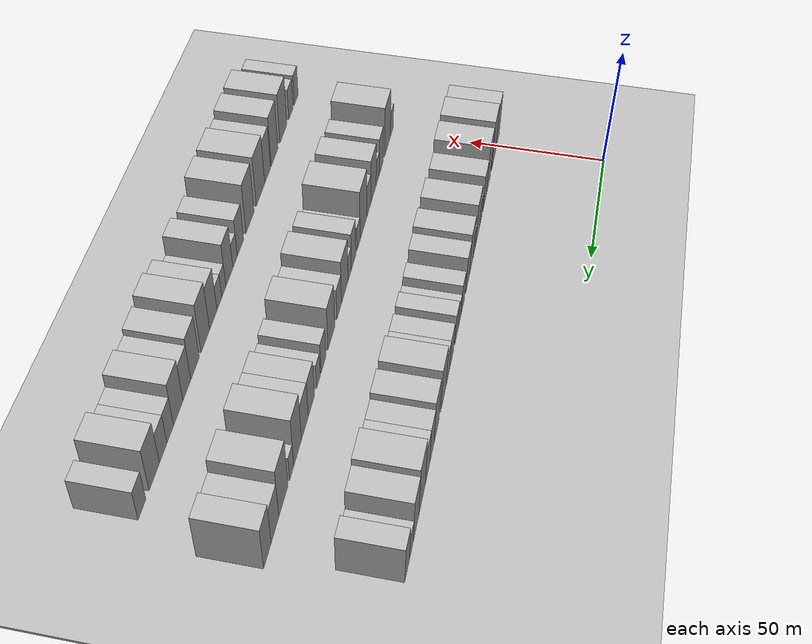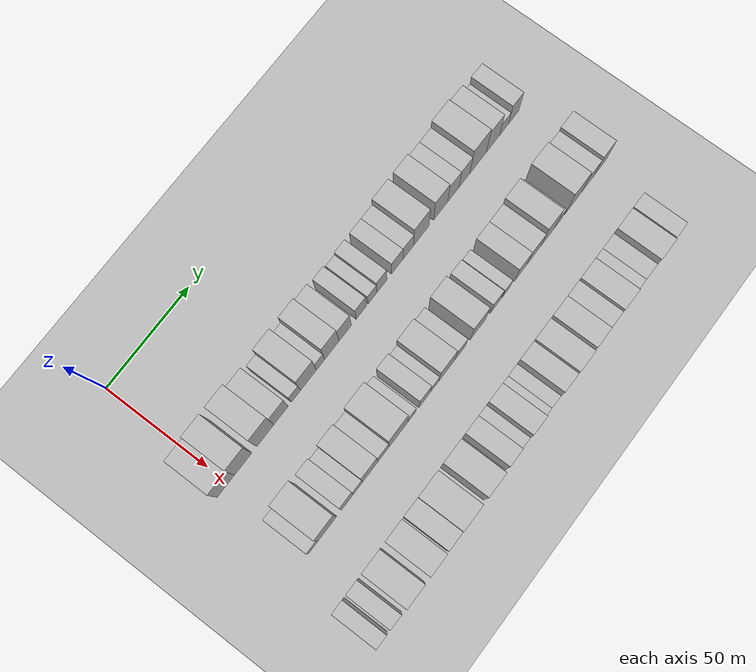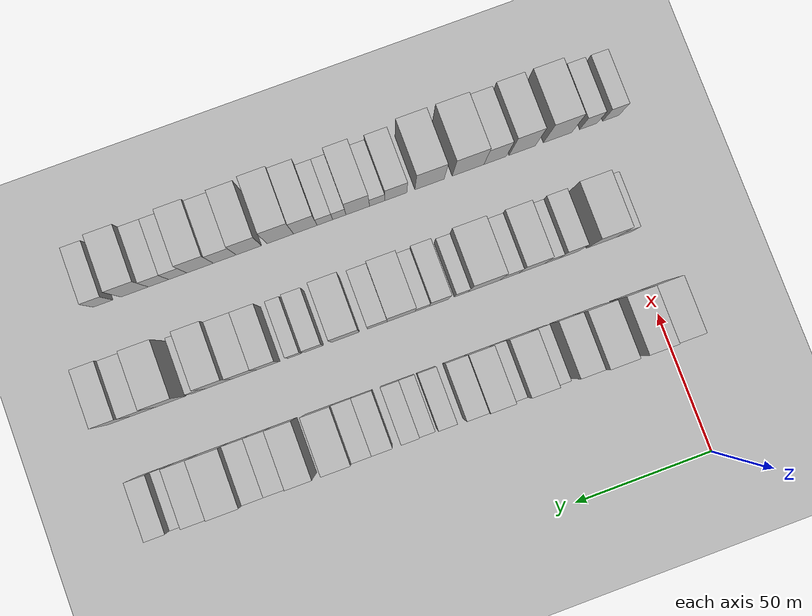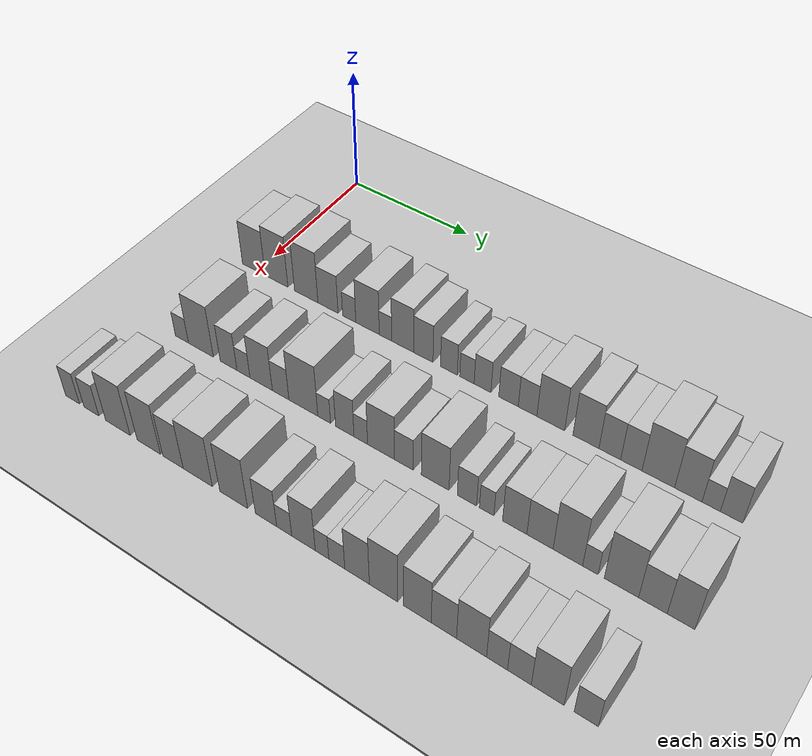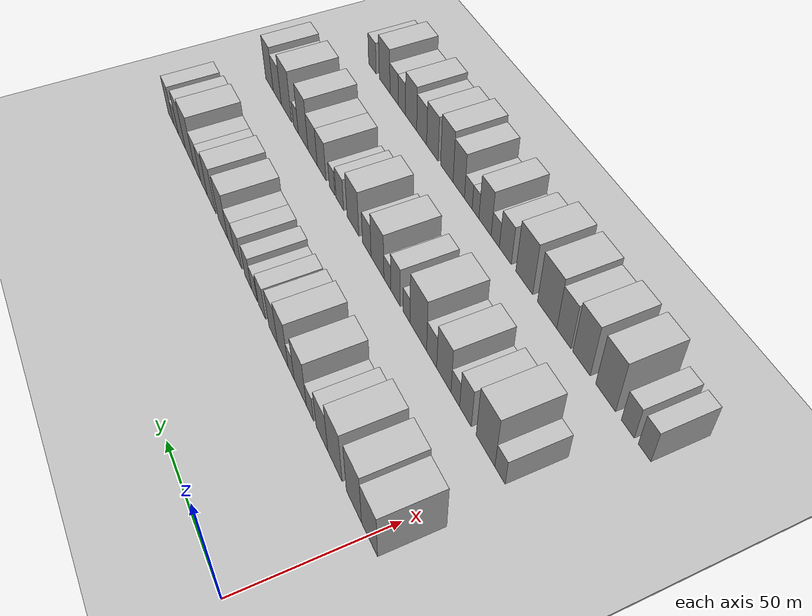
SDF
<sdf version="1.6">
 <world name="default">
  <include><name>ground_plane_1</name><uri>model://HANNAS_ground_plane</uri></include>
  <include>
   <name>ground_plane_2</name>
   <uri>model://HANNAS_ground_plane</uri>
   <pose>100 0 0  0 0 0</pose>
  </include>
  <model name="building_46">
   <static>1</static>
   <pose>50.0000 -1.2661 0 0.000000 0.000000 0.000000</pose>
   <link name="link">
    <pose>0 0 10.50 0 0 0</pose>
    <collision name="collision"><geometry><box><size>20.0000 10.4453 21.0000</size></box></geometry></collision>
    <visual name="visual">
     <cast_shadows>0</cast_shadows>
     <geometry><box><size>20.0000 10.4453 21.0000</size></box></geometry>
     <material>
      <script>
       <uri>model://HANNAS_wall/materials/scripts</uri>
       <uri>model://HANNAS_wall/materials/textures</uri>
       <name>vrc/HANNAS_wall</name>
      </script>
     </material>
    </visual>
   </link>
  </model>
  <model name="building_47">
   <static>1</static>
   <pose>50.0000 9.1413 0 0.000000 0.000000 0.000000</pose>
   <link name="link">
    <pose>0 0 12.00 0 0 0</pose>
    <collision name="collision"><geometry><box><size>20.0000 10.3695 24.0000</size></box></geometry></collision>
    <visual name="visual">
     <cast_shadows>0</cast_shadows>
     <geometry><box><size>20.0000 10.3695 24.0000</size></box></geometry>
     <material>
      <script>
       <uri>model://HANNAS_wall/materials/scripts</uri>
       <uri>model://HANNAS_wall/materials/textures</uri>
       <name>vrc/HANNAS_wall</name>
      </script>
     </material>
    </visual>
   </link>
  </model>
  <model name="building_48">
   <static>1</static>
   <pose>50.0000 22.5073 0 0.000000 0.000000 0.000000</pose>
   <link name="link">
    <pose>0 0 12.00 0 0 0</pose>
    <collision name="collision"><geometry><box><size>20.0000 10.3625 24.0000</size></box></geometry></collision>
    <visual name="visual">
     <cast_shadows>0</cast_shadows>
     <geometry><box><size>20.0000 10.3625 24.0000</size></box></geometry>
     <material>
      <script>
       <uri>model://HANNAS_wall/materials/scripts</uri>
       <uri>model://HANNAS_wall/materials/textures</uri>
       <name>vrc/HANNAS_wall</name>
      </script>
     </material>
    </visual>
   </link>
  </model>
  <model name="building_49">
   <static>1</static>
   <pose>50.0000 32.0715 0 0.000000 0.000000 0.000000</pose>
   <link name="link">
    <pose>0 0 9.00 0 0 0</pose>
    <collision name="collision"><geometry><box><size>20.0000 8.7659 18.0000</size></box></geometry></collision>
    <visual name="visual">
     <cast_shadows>0</cast_shadows>
     <geometry><box><size>20.0000 8.7659 18.0000</size></box></geometry>
     <material>
      <script>
       <uri>model://HANNAS_wall/materials/scripts</uri>
       <uri>model://HANNAS_wall/materials/textures</uri>
       <name>vrc/HANNAS_wall</name>
      </script>
     </material>
    </visual>
   </link>
  </model>
  <model name="building_50">
   <static>1</static>
   <pose>50.0000 41.2767 0 0.000000 0.000000 0.000000</pose>
   <link name="link">
    <pose>0 0 6.00 0 0 0</pose>
    <collision name="collision"><geometry><box><size>20.0000 5.6445 12.0000</size></box></geometry></collision>
    <visual name="visual">
     <cast_shadows>0</cast_shadows>
     <geometry><box><size>20.0000 5.6445 12.0000</size></box></geometry>
     <material>
      <script>
       <uri>model://HANNAS_wall/materials/scripts</uri>
       <uri>model://HANNAS_wall/materials/textures</uri>
       <name>vrc/HANNAS_wall</name>
      </script>
     </material>
    </visual>
   </link>
  </model>
  <model name="building_51">
   <static>1</static>
   <pose>50.0000 49.0325 0 0.000000 0.000000 0.000000</pose>
   <link name="link">
    <pose>0 0 10.50 0 0 0</pose>
    <collision name="collision"><geometry><box><size>20.0000 9.8673 21.0000</size></box></geometry></collision>
    <visual name="visual">
     <cast_shadows>0</cast_shadows>
     <geometry><box><size>20.0000 9.8673 21.0000</size></box></geometry>
     <material>
      <script>
       <uri>model://HANNAS_wall/materials/scripts</uri>
       <uri>model://HANNAS_wall/materials/textures</uri>
       <name>vrc/HANNAS_wall</name>
      </script>
     </material>
    </visual>
   </link>
  </model>
  <model name="building_52">
   <static>1</static>
   <pose>50.0000 56.5522 0 0.000000 0.000000 0.000000</pose>
   <link name="link">
    <pose>0 0 6.00 0 0 0</pose>
    <collision name="collision"><geometry><box><size>20.0000 5.1720 12.0000</size></box></geometry></collision>
    <visual name="visual">
     <cast_shadows>0</cast_shadows>
     <geometry><box><size>20.0000 5.1720 12.0000</size></box></geometry>
     <material>
      <script>
       <uri>model://HANNAS_wall/materials/scripts</uri>
       <uri>model://HANNAS_wall/materials/textures</uri>
       <name>vrc/HANNAS_wall</name>
      </script>
     </material>
    </visual>
   </link>
  </model>
  <model name="building_53">
   <static>1</static>
   <pose>50.0000 63.6290 0 0.000000 0.000000 0.000000</pose>
   <link name="link">
    <pose>0 0 10.50 0 0 0</pose>
    <collision name="collision"><geometry><box><size>20.0000 8.9818 21.0000</size></box></geometry></collision>
    <visual name="visual">
     <cast_shadows>0</cast_shadows>
     <geometry><box><size>20.0000 8.9818 21.0000</size></box></geometry>
     <material>
      <script>
       <uri>model://HANNAS_wall/materials/scripts</uri>
       <uri>model://HANNAS_wall/materials/textures</uri>
       <name>vrc/HANNAS_wall</name>
      </script>
     </material>
    </visual>
   </link>
  </model>
  <model name="building_54">
   <static>1</static>
   <pose>50.0000 72.0304 0 0.000000 0.000000 0.000000</pose>
   <link name="link">
    <pose>0 0 9.00 0 0 0</pose>
    <collision name="collision"><geometry><box><size>20.0000 7.8210 18.0000</size></box></geometry></collision>
    <visual name="visual">
     <cast_shadows>0</cast_shadows>
     <geometry><box><size>20.0000 7.8210 18.0000</size></box></geometry>
     <material>
      <script>
       <uri>model://HANNAS_wall/materials/scripts</uri>
       <uri>model://HANNAS_wall/materials/textures</uri>
       <name>vrc/HANNAS_wall</name>
      </script>
     </material>
    </visual>
   </link>
  </model>
  <model name="building_55">
   <static>1</static>
   <pose>50.0000 82.2617 0 0.000000 0.000000 0.000000</pose>
   <link name="link">
    <pose>0 0 7.50 0 0 0</pose>
    <collision name="collision"><geometry><box><size>20.0000 6.6414 15.0000</size></box></geometry></collision>
    <visual name="visual">
     <cast_shadows>0</cast_shadows>
     <geometry><box><size>20.0000 6.6414 15.0000</size></box></geometry>
     <material>
      <script>
       <uri>model://HANNAS_wall/materials/scripts</uri>
       <uri>model://HANNAS_wall/materials/textures</uri>
       <name>vrc/HANNAS_wall</name>
      </script>
     </material>
    </visual>
   </link>
  </model>
  <model name="building_56">
   <static>1</static>
   <pose>50.0000 89.3755 0 0.000000 0.000000 0.000000</pose>
   <link name="link">
    <pose>0 0 6.00 0 0 0</pose>
    <collision name="collision"><geometry><box><size>20.0000 5.5863 12.0000</size></box></geometry></collision>
    <visual name="visual">
     <cast_shadows>0</cast_shadows>
     <geometry><box><size>20.0000 5.5863 12.0000</size></box></geometry>
     <material>
      <script>
       <uri>model://HANNAS_wall/materials/scripts</uri>
       <uri>model://HANNAS_wall/materials/textures</uri>
       <name>vrc/HANNAS_wall</name>
      </script>
     </material>
    </visual>
   </link>
  </model>
  <model name="building_57">
   <static>1</static>
   <pose>50.0000 95.4009 0 0.000000 0.000000 0.000000</pose>
   <link name="link">
    <pose>0 0 7.50 0 0 0</pose>
    <collision name="collision"><geometry><box><size>20.0000 6.4646 15.0000</size></box></geometry></collision>
    <visual name="visual">
     <cast_shadows>0</cast_shadows>
     <geometry><box><size>20.0000 6.4646 15.0000</size></box></geometry>
     <material>
      <script>
       <uri>model://HANNAS_wall/materials/scripts</uri>
       <uri>model://HANNAS_wall/materials/textures</uri>
       <name>vrc/HANNAS_wall</name>
      </script>
     </material>
    </visual>
   </link>
  </model>
  <model name="building_58">
   <static>1</static>
   <pose>50.0000 105.3045 0 0.000000 0.000000 0.000000</pose>
   <link name="link">
    <pose>0 0 7.50 0 0 0</pose>
    <collision name="collision"><geometry><box><size>20.0000 7.3424 15.0000</size></box></geometry></collision>
    <visual name="visual">
     <cast_shadows>0</cast_shadows>
     <geometry><box><size>20.0000 7.3424 15.0000</size></box></geometry>
     <material>
      <script>
       <uri>model://HANNAS_wall/materials/scripts</uri>
       <uri>model://HANNAS_wall/materials/textures</uri>
       <name>vrc/HANNAS_wall</name>
      </script>
     </material>
    </visual>
   </link>
  </model>
  <model name="building_59">
   <static>1</static>
   <pose>50.0000 112.4464 0 0.000000 0.000000 0.000000</pose>
   <link name="link">
    <pose>0 0 7.50 0 0 0</pose>
    <collision name="collision"><geometry><box><size>20.0000 6.9415 15.0000</size></box></geometry></collision>
    <visual name="visual">
     <cast_shadows>0</cast_shadows>
     <geometry><box><size>20.0000 6.9415 15.0000</size></box></geometry>
     <material>
      <script>
       <uri>model://HANNAS_wall/materials/scripts</uri>
       <uri>model://HANNAS_wall/materials/textures</uri>
       <name>vrc/HANNAS_wall</name>
      </script>
     </material>
    </visual>
   </link>
  </model>
  <model name="building_60">
   <static>1</static>
   <pose>50.0000 120.9974 0 0.000000 0.000000 0.000000</pose>
   <link name="link">
    <pose>0 0 10.50 0 0 0</pose>
    <collision name="collision"><geometry><box><size>20.0000 10.1605 21.0000</size></box></geometry></collision>
    <visual name="visual">
     <cast_shadows>0</cast_shadows>
     <geometry><box><size>20.0000 10.1605 21.0000</size></box></geometry>
     <material>
      <script>
       <uri>model://HANNAS_wall/materials/scripts</uri>
       <uri>model://HANNAS_wall/materials/textures</uri>
       <name>vrc/HANNAS_wall</name>
      </script>
     </material>
    </visual>
   </link>
  </model>
  <model name="building_61">
   <static>1</static>
   <pose>50.0000 133.7174 0 0.000000 0.000000 0.000000</pose>
   <link name="link">
    <pose>0 0 10.50 0 0 0</pose>
    <collision name="collision"><geometry><box><size>20.0000 9.2794 21.0000</size></box></geometry></collision>
    <visual name="visual">
     <cast_shadows>0</cast_shadows>
     <geometry><box><size>20.0000 9.2794 21.0000</size></box></geometry>
     <material>
      <script>
       <uri>model://HANNAS_wall/materials/scripts</uri>
       <uri>model://HANNAS_wall/materials/textures</uri>
       <name>vrc/HANNAS_wall</name>
      </script>
     </material>
    </visual>
   </link>
  </model>
  <model name="building_62">
   <static>1</static>
   <pose>50.0000 142.1484 0 0.000000 0.000000 0.000000</pose>
   <link name="link">
    <pose>0 0 9.00 0 0 0</pose>
    <collision name="collision"><geometry><box><size>20.0000 7.5827 18.0000</size></box></geometry></collision>
    <visual name="visual">
     <cast_shadows>0</cast_shadows>
     <geometry><box><size>20.0000 7.5827 18.0000</size></box></geometry>
     <material>
      <script>
       <uri>model://HANNAS_wall/materials/scripts</uri>
       <uri>model://HANNAS_wall/materials/textures</uri>
       <name>vrc/HANNAS_wall</name>
      </script>
     </material>
    </visual>
   </link>
  </model>
  <model name="building_63">
   <static>1</static>
   <pose>50.0000 149.6116 0 0.000000 0.000000 0.000000</pose>
   <link name="link">
    <pose>0 0 9.00 0 0 0</pose>
    <collision name="collision"><geometry><box><size>20.0000 7.3437 18.0000</size></box></geometry></collision>
    <visual name="visual">
     <cast_shadows>0</cast_shadows>
     <geometry><box><size>20.0000 7.3437 18.0000</size></box></geometry>
     <material>
      <script>
       <uri>model://HANNAS_wall/materials/scripts</uri>
       <uri>model://HANNAS_wall/materials/textures</uri>
       <name>vrc/HANNAS_wall</name>
      </script>
     </material>
    </visual>
   </link>
  </model>
  <model name="building_64">
   <static>1</static>
   <pose>50.0000 158.7997 0 0.000000 0.000000 0.000000</pose>
   <link name="link">
    <pose>0 0 12.00 0 0 0</pose>
    <collision name="collision"><geometry><box><size>20.0000 11.0326 24.0000</size></box></geometry></collision>
    <visual name="visual">
     <cast_shadows>0</cast_shadows>
     <geometry><box><size>20.0000 11.0326 24.0000</size></box></geometry>
     <material>
      <script>
       <uri>model://HANNAS_wall/materials/scripts</uri>
       <uri>model://HANNAS_wall/materials/textures</uri>
       <name>vrc/HANNAS_wall</name>
      </script>
     </material>
    </visual>
   </link>
  </model>
  <model name="building_65">
   <static>1</static>
   <pose>50.0000 168.8379 0 0.000000 0.000000 0.000000</pose>
   <link name="link">
    <pose>0 0 10.50 0 0 0</pose>
    <collision name="collision"><geometry><box><size>20.0000 9.0439 21.0000</size></box></geometry></collision>
    <visual name="visual">
     <cast_shadows>0</cast_shadows>
     <geometry><box><size>20.0000 9.0439 21.0000</size></box></geometry>
     <material>
      <script>
       <uri>model://HANNAS_wall/materials/scripts</uri>
       <uri>model://HANNAS_wall/materials/textures</uri>
       <name>vrc/HANNAS_wall</name>
      </script>
     </material>
    </visual>
   </link>
  </model>
  <model name="building_66">
   <static>1</static>
   <pose>50.0000 176.3385 0 0.000000 0.000000 0.000000</pose>
   <link name="link">
    <pose>0 0 6.00 0 0 0</pose>
    <collision name="collision"><geometry><box><size>20.0000 5.9573 12.0000</size></box></geometry></collision>
    <visual name="visual">
     <cast_shadows>0</cast_shadows>
     <geometry><box><size>20.0000 5.9573 12.0000</size></box></geometry>
     <material>
      <script>
       <uri>model://HANNAS_wall/materials/scripts</uri>
       <uri>model://HANNAS_wall/materials/textures</uri>
       <name>vrc/HANNAS_wall</name>
      </script>
     </material>
    </visual>
   </link>
  </model>
  <model name="building_67">
   <static>1</static>
   <pose>50.0000 182.9283 0 0.000000 0.000000 0.000000</pose>
   <link name="link">
    <pose>0 0 9.00 0 0 0</pose>
    <collision name="collision"><geometry><box><size>20.0000 7.2224 18.0000</size></box></geometry></collision>
    <visual name="visual">
     <cast_shadows>0</cast_shadows>
     <geometry><box><size>20.0000 7.2224 18.0000</size></box></geometry>
     <material>
      <script>
       <uri>model://HANNAS_wall/materials/scripts</uri>
       <uri>model://HANNAS_wall/materials/textures</uri>
       <name>vrc/HANNAS_wall</name>
      </script>
     </material>
    </visual>
   </link>
  </model>
  <model name="building_132">
   <static>1</static>
   <pose>90.0000 0.9035 0 0.000000 0.000000 0.000000</pose>
   <link name="link">
    <pose>0 0 6.00 0 0 0</pose>
    <collision name="collision"><geometry><box><size>20.0000 5.8924 12.0000</size></box></geometry></collision>
    <visual name="visual">
     <cast_shadows>0</cast_shadows>
     <geometry><box><size>20.0000 5.8924 12.0000</size></box></geometry>
     <material>
      <script>
       <uri>model://HANNAS_wall/materials/scripts</uri>
       <uri>model://HANNAS_wall/materials/textures</uri>
       <name>vrc/HANNAS_wall</name>
      </script>
     </material>
    </visual>
   </link>
  </model>
  <model name="building_133">
   <static>1</static>
   <pose>90.0000 9.3978 0 0.000000 0.000000 0.000000</pose>
   <link name="link">
    <pose>0 0 12.00 0 0 0</pose>
    <collision name="collision"><geometry><box><size>20.0000 11.0961 24.0000</size></box></geometry></collision>
    <visual name="visual">
     <cast_shadows>0</cast_shadows>
     <geometry><box><size>20.0000 11.0961 24.0000</size></box></geometry>
     <material>
      <script>
       <uri>model://HANNAS_wall/materials/scripts</uri>
       <uri>model://HANNAS_wall/materials/textures</uri>
       <name>vrc/HANNAS_wall</name>
      </script>
     </material>
    </visual>
   </link>
  </model>
  <model name="building_134">
   <static>1</static>
   <pose>90.0000 21.5952 0 0.000000 0.000000 0.000000</pose>
   <link name="link">
    <pose>0 0 9.00 0 0 0</pose>
    <collision name="collision"><geometry><box><size>20.0000 7.2986 18.0000</size></box></geometry></collision>
    <visual name="visual">
     <cast_shadows>0</cast_shadows>
     <geometry><box><size>20.0000 7.2986 18.0000</size></box></geometry>
     <material>
      <script>
       <uri>model://HANNAS_wall/materials/scripts</uri>
       <uri>model://HANNAS_wall/materials/textures</uri>
       <name>vrc/HANNAS_wall</name>
      </script>
     </material>
    </visual>
   </link>
  </model>
  <model name="building_135">
   <static>1</static>
   <pose>90.0000 28.0359 0 0.000000 0.000000 0.000000</pose>
   <link name="link">
    <pose>0 0 6.00 0 0 0</pose>
    <collision name="collision"><geometry><box><size>20.0000 5.5828 12.0000</size></box></geometry></collision>
    <visual name="visual">
     <cast_shadows>0</cast_shadows>
     <geometry><box><size>20.0000 5.5828 12.0000</size></box></geometry>
     <material>
      <script>
       <uri>model://HANNAS_wall/materials/scripts</uri>
       <uri>model://HANNAS_wall/materials/textures</uri>
       <name>vrc/HANNAS_wall</name>
      </script>
     </material>
    </visual>
   </link>
  </model>
  <model name="building_136">
   <static>1</static>
   <pose>90.0000 35.5487 0 0.000000 0.000000 0.000000</pose>
   <link name="link">
    <pose>0 0 10.50 0 0 0</pose>
    <collision name="collision"><geometry><box><size>20.0000 9.4429 21.0000</size></box></geometry></collision>
    <visual name="visual">
     <cast_shadows>0</cast_shadows>
     <geometry><box><size>20.0000 9.4429 21.0000</size></box></geometry>
     <material>
      <script>
       <uri>model://HANNAS_wall/materials/scripts</uri>
       <uri>model://HANNAS_wall/materials/textures</uri>
       <name>vrc/HANNAS_wall</name>
      </script>
     </material>
    </visual>
   </link>
  </model>
  <model name="building_137">
   <static>1</static>
   <pose>90.0000 43.7064 0 0.000000 0.000000 0.000000</pose>
   <link name="link">
    <pose>0 0 7.50 0 0 0</pose>
    <collision name="collision"><geometry><box><size>20.0000 6.8723 15.0000</size></box></geometry></collision>
    <visual name="visual">
     <cast_shadows>0</cast_shadows>
     <geometry><box><size>20.0000 6.8723 15.0000</size></box></geometry>
     <material>
      <script>
       <uri>model://HANNAS_wall/materials/scripts</uri>
       <uri>model://HANNAS_wall/materials/textures</uri>
       <name>vrc/HANNAS_wall</name>
      </script>
     </material>
    </visual>
   </link>
  </model>
  <model name="building_138">
   <static>1</static>
   <pose>90.0000 53.0431 0 0.000000 0.000000 0.000000</pose>
   <link name="link">
    <pose>0 0 12.00 0 0 0</pose>
    <collision name="collision"><geometry><box><size>20.0000 11.8011 24.0000</size></box></geometry></collision>
    <visual name="visual">
     <cast_shadows>0</cast_shadows>
     <geometry><box><size>20.0000 11.8011 24.0000</size></box></geometry>
     <material>
      <script>
       <uri>model://HANNAS_wall/materials/scripts</uri>
       <uri>model://HANNAS_wall/materials/textures</uri>
       <name>vrc/HANNAS_wall</name>
      </script>
     </material>
    </visual>
   </link>
  </model>
  <model name="building_139">
   <static>1</static>
   <pose>90.0000 61.4993 0 0.000000 0.000000 0.000000</pose>
   <link name="link">
    <pose>0 0 6.00 0 0 0</pose>
    <collision name="collision"><geometry><box><size>20.0000 5.1113 12.0000</size></box></geometry></collision>
    <visual name="visual">
     <cast_shadows>0</cast_shadows>
     <geometry><box><size>20.0000 5.1113 12.0000</size></box></geometry>
     <material>
      <script>
       <uri>model://HANNAS_wall/materials/scripts</uri>
       <uri>model://HANNAS_wall/materials/textures</uri>
       <name>vrc/HANNAS_wall</name>
      </script>
     </material>
    </visual>
   </link>
  </model>
  <model name="building_140">
   <static>1</static>
   <pose>90.0000 69.6792 0 0.000000 0.000000 0.000000</pose>
   <link name="link">
    <pose>0 0 9.00 0 0 0</pose>
    <collision name="collision"><geometry><box><size>20.0000 7.2485 18.0000</size></box></geometry></collision>
    <visual name="visual">
     <cast_shadows>0</cast_shadows>
     <geometry><box><size>20.0000 7.2485 18.0000</size></box></geometry>
     <material>
      <script>
       <uri>model://HANNAS_wall/materials/scripts</uri>
       <uri>model://HANNAS_wall/materials/textures</uri>
       <name>vrc/HANNAS_wall</name>
      </script>
     </material>
    </visual>
   </link>
  </model>
  <model name="building_141">
   <static>1</static>
   <pose>90.0000 75.9424 0 0.000000 0.000000 0.000000</pose>
   <link name="link">
    <pose>0 0 6.00 0 0 0</pose>
    <collision name="collision"><geometry><box><size>20.0000 5.2779 12.0000</size></box></geometry></collision>
    <visual name="visual">
     <cast_shadows>0</cast_shadows>
     <geometry><box><size>20.0000 5.2779 12.0000</size></box></geometry>
     <material>
      <script>
       <uri>model://HANNAS_wall/materials/scripts</uri>
       <uri>model://HANNAS_wall/materials/textures</uri>
       <name>vrc/HANNAS_wall</name>
      </script>
     </material>
    </visual>
   </link>
  </model>
  <model name="building_142">
   <static>1</static>
   <pose>90.0000 83.7188 0 0.000000 0.000000 0.000000</pose>
   <link name="link">
    <pose>0 0 10.50 0 0 0</pose>
    <collision name="collision"><geometry><box><size>20.0000 10.2750 21.0000</size></box></geometry></collision>
    <visual name="visual">
     <cast_shadows>0</cast_shadows>
     <geometry><box><size>20.0000 10.2750 21.0000</size></box></geometry>
     <material>
      <script>
       <uri>model://HANNAS_wall/materials/scripts</uri>
       <uri>model://HANNAS_wall/materials/textures</uri>
       <name>vrc/HANNAS_wall</name>
      </script>
     </material>
    </visual>
   </link>
  </model>
  <model name="building_143">
   <static>1</static>
   <pose>90.0000 92.3898 0 0.000000 0.000000 0.000000</pose>
   <link name="link">
    <pose>0 0 7.50 0 0 0</pose>
    <collision name="collision"><geometry><box><size>20.0000 7.0669 15.0000</size></box></geometry></collision>
    <visual name="visual">
     <cast_shadows>0</cast_shadows>
     <geometry><box><size>20.0000 7.0669 15.0000</size></box></geometry>
     <material>
      <script>
       <uri>model://HANNAS_wall/materials/scripts</uri>
       <uri>model://HANNAS_wall/materials/textures</uri>
       <name>vrc/HANNAS_wall</name>
      </script>
     </material>
    </visual>
   </link>
  </model>
  <model name="building_144">
   <static>1</static>
   <pose>90.0000 103.9994 0 0.000000 0.000000 0.000000</pose>
   <link name="link">
    <pose>0 0 10.50 0 0 0</pose>
    <collision name="collision"><geometry><box><size>20.0000 10.1522 21.0000</size></box></geometry></collision>
    <visual name="visual">
     <cast_shadows>0</cast_shadows>
     <geometry><box><size>20.0000 10.1522 21.0000</size></box></geometry>
     <material>
      <script>
       <uri>model://HANNAS_wall/materials/scripts</uri>
       <uri>model://HANNAS_wall/materials/textures</uri>
       <name>vrc/HANNAS_wall</name>
      </script>
     </material>
    </visual>
   </link>
  </model>
  <model name="building_145">
   <static>1</static>
   <pose>90.0000 115.5184 0 0.000000 0.000000 0.000000</pose>
   <link name="link">
    <pose>0 0 7.50 0 0 0</pose>
    <collision name="collision"><geometry><box><size>20.0000 6.8859 15.0000</size></box></geometry></collision>
    <visual name="visual">
     <cast_shadows>0</cast_shadows>
     <geometry><box><size>20.0000 6.8859 15.0000</size></box></geometry>
     <material>
      <script>
       <uri>model://HANNAS_wall/materials/scripts</uri>
       <uri>model://HANNAS_wall/materials/textures</uri>
       <name>vrc/HANNAS_wall</name>
      </script>
     </material>
    </visual>
   </link>
  </model>
  <model name="building_146">
   <static>1</static>
   <pose>90.0000 122.5100 0 0.000000 0.000000 0.000000</pose>
   <link name="link">
    <pose>0 0 6.00 0 0 0</pose>
    <collision name="collision"><geometry><box><size>20.0000 5.0973 12.0000</size></box></geometry></collision>
    <visual name="visual">
     <cast_shadows>0</cast_shadows>
     <geometry><box><size>20.0000 5.0973 12.0000</size></box></geometry>
     <material>
      <script>
       <uri>model://HANNAS_wall/materials/scripts</uri>
       <uri>model://HANNAS_wall/materials/textures</uri>
       <name>vrc/HANNAS_wall</name>
      </script>
     </material>
    </visual>
   </link>
  </model>
  <model name="building_147">
   <static>1</static>
   <pose>90.0000 132.2653 0 0.000000 0.000000 0.000000</pose>
   <link name="link">
    <pose>0 0 9.00 0 0 0</pose>
    <collision name="collision"><geometry><box><size>20.0000 8.4133 18.0000</size></box></geometry></collision>
    <visual name="visual">
     <cast_shadows>0</cast_shadows>
     <geometry><box><size>20.0000 8.4133 18.0000</size></box></geometry>
     <material>
      <script>
       <uri>model://HANNAS_wall/materials/scripts</uri>
       <uri>model://HANNAS_wall/materials/textures</uri>
       <name>vrc/HANNAS_wall</name>
      </script>
     </material>
    </visual>
   </link>
  </model>
  <model name="building_148">
   <static>1</static>
   <pose>90.0000 140.9160 0 0.000000 0.000000 0.000000</pose>
   <link name="link">
    <pose>0 0 9.00 0 0 0</pose>
    <collision name="collision"><geometry><box><size>20.0000 8.8882 18.0000</size></box></geometry></collision>
    <visual name="visual">
     <cast_shadows>0</cast_shadows>
     <geometry><box><size>20.0000 8.8882 18.0000</size></box></geometry>
     <material>
      <script>
       <uri>model://HANNAS_wall/materials/scripts</uri>
       <uri>model://HANNAS_wall/materials/textures</uri>
       <name>vrc/HANNAS_wall</name>
      </script>
     </material>
    </visual>
   </link>
  </model>
  <model name="building_149">
   <static>1</static>
   <pose>90.0000 150.2552 0 0.000000 0.000000 0.000000</pose>
   <link name="link">
    <pose>0 0 12.00 0 0 0</pose>
    <collision name="collision"><geometry><box><size>20.0000 9.7903 24.0000</size></box></geometry></collision>
    <visual name="visual">
     <cast_shadows>0</cast_shadows>
     <geometry><box><size>20.0000 9.7903 24.0000</size></box></geometry>
     <material>
      <script>
       <uri>model://HANNAS_wall/materials/scripts</uri>
       <uri>model://HANNAS_wall/materials/textures</uri>
       <name>vrc/HANNAS_wall</name>
      </script>
     </material>
    </visual>
   </link>
  </model>
  <model name="building_150">
   <static>1</static>
   <pose>90.0000 157.6554 0 0.000000 0.000000 0.000000</pose>
   <link name="link">
    <pose>0 0 6.00 0 0 0</pose>
    <collision name="collision"><geometry><box><size>20.0000 5.0099 12.0000</size></box></geometry></collision>
    <visual name="visual">
     <cast_shadows>0</cast_shadows>
     <geometry><box><size>20.0000 5.0099 12.0000</size></box></geometry>
     <material>
      <script>
       <uri>model://HANNAS_wall/materials/scripts</uri>
       <uri>model://HANNAS_wall/materials/textures</uri>
       <name>vrc/HANNAS_wall</name>
      </script>
     </material>
    </visual>
   </link>
  </model>
  <model name="building_151">
   <static>1</static>
   <pose>90.0000 167.6251 0 0.000000 0.000000 0.000000</pose>
   <link name="link">
    <pose>0 0 12.00 0 0 0</pose>
    <collision name="collision"><geometry><box><size>20.0000 10.9295 24.0000</size></box></geometry></collision>
    <visual name="visual">
     <cast_shadows>0</cast_shadows>
     <geometry><box><size>20.0000 10.9295 24.0000</size></box></geometry>
     <material>
      <script>
       <uri>model://HANNAS_wall/materials/scripts</uri>
       <uri>model://HANNAS_wall/materials/textures</uri>
       <name>vrc/HANNAS_wall</name>
      </script>
     </material>
    </visual>
   </link>
  </model>
  <model name="building_152">
   <static>1</static>
   <pose>90.0000 177.5412 0 0.000000 0.000000 0.000000</pose>
   <link name="link">
    <pose>0 0 9.00 0 0 0</pose>
    <collision name="collision"><geometry><box><size>20.0000 8.9027 18.0000</size></box></geometry></collision>
    <visual name="visual">
     <cast_shadows>0</cast_shadows>
     <geometry><box><size>20.0000 8.9027 18.0000</size></box></geometry>
     <material>
      <script>
       <uri>model://HANNAS_wall/materials/scripts</uri>
       <uri>model://HANNAS_wall/materials/textures</uri>
       <name>vrc/HANNAS_wall</name>
      </script>
     </material>
    </visual>
   </link>
  </model>
  <model name="building_153">
   <static>1</static>
   <pose>90.0000 186.2119 0 0.000000 0.000000 0.000000</pose>
   <link name="link">
    <pose>0 0 10.50 0 0 0</pose>
    <collision name="collision"><geometry><box><size>20.0000 8.4387 21.0000</size></box></geometry></collision>
    <visual name="visual">
     <cast_shadows>0</cast_shadows>
     <geometry><box><size>20.0000 8.4387 21.0000</size></box></geometry>
     <material>
      <script>
       <uri>model://HANNAS_wall/materials/scripts</uri>
       <uri>model://HANNAS_wall/materials/textures</uri>
       <name>vrc/HANNAS_wall</name>
      </script>
     </material>
    </visual>
   </link>
  </model>
  <model name="building_218">
   <static>1</static>
   <pose>130.0000 -9.8092 0 0.000000 0.000000 0.000000</pose>
   <link name="link">
    <pose>0 0 7.50 0 0 0</pose>
    <collision name="collision"><geometry><box><size>20.0000 6.2564 15.0000</size></box></geometry></collision>
    <visual name="visual">
     <cast_shadows>0</cast_shadows>
     <geometry><box><size>20.0000 6.2564 15.0000</size></box></geometry>
     <material>
      <script>
       <uri>model://HANNAS_wall/materials/scripts</uri>
       <uri>model://HANNAS_wall/materials/textures</uri>
       <name>vrc/HANNAS_wall</name>
      </script>
     </material>
    </visual>
   </link>
  </model>
  <model name="building_219">
   <static>1</static>
   <pose>130.0000 -1.3647 0 0.000000 0.000000 0.000000</pose>
   <link name="link">
    <pose>0 0 7.50 0 0 0</pose>
    <collision name="collision"><geometry><box><size>20.0000 6.6325 15.0000</size></box></geometry></collision>
    <visual name="visual">
     <cast_shadows>0</cast_shadows>
     <geometry><box><size>20.0000 6.6325 15.0000</size></box></geometry>
     <material>
      <script>
       <uri>model://HANNAS_wall/materials/scripts</uri>
       <uri>model://HANNAS_wall/materials/textures</uri>
       <name>vrc/HANNAS_wall</name>
      </script>
     </material>
    </visual>
   </link>
  </model>
  <model name="building_220">
   <static>1</static>
   <pose>130.0000 10.2895 0 0.000000 0.000000 0.000000</pose>
   <link name="link">
    <pose>0 0 12.00 0 0 0</pose>
    <collision name="collision"><geometry><box><size>20.0000 10.6760 24.0000</size></box></geometry></collision>
    <visual name="visual">
     <cast_shadows>0</cast_shadows>
     <geometry><box><size>20.0000 10.6760 24.0000</size></box></geometry>
     <material>
      <script>
       <uri>model://HANNAS_wall/materials/scripts</uri>
       <uri>model://HANNAS_wall/materials/textures</uri>
       <name>vrc/HANNAS_wall</name>
      </script>
     </material>
    </visual>
   </link>
  </model>
  <model name="building_221">
   <static>1</static>
   <pose>130.0000 23.5789 0 0.000000 0.000000 0.000000</pose>
   <link name="link">
    <pose>0 0 12.00 0 0 0</pose>
    <collision name="collision"><geometry><box><size>20.0000 9.9028 24.0000</size></box></geometry></collision>
    <visual name="visual">
     <cast_shadows>0</cast_shadows>
     <geometry><box><size>20.0000 9.9028 24.0000</size></box></geometry>
     <material>
      <script>
       <uri>model://HANNAS_wall/materials/scripts</uri>
       <uri>model://HANNAS_wall/materials/textures</uri>
       <name>vrc/HANNAS_wall</name>
      </script>
     </material>
    </visual>
   </link>
  </model>
  <model name="building_222">
   <static>1</static>
   <pose>130.0000 33.7404 0 0.000000 0.000000 0.000000</pose>
   <link name="link">
    <pose>0 0 10.50 0 0 0</pose>
    <collision name="collision"><geometry><box><size>20.0000 8.4202 21.0000</size></box></geometry></collision>
    <visual name="visual">
     <cast_shadows>0</cast_shadows>
     <geometry><box><size>20.0000 8.4202 21.0000</size></box></geometry>
     <material>
      <script>
       <uri>model://HANNAS_wall/materials/scripts</uri>
       <uri>model://HANNAS_wall/materials/textures</uri>
       <name>vrc/HANNAS_wall</name>
      </script>
     </material>
    </visual>
   </link>
  </model>
  <model name="building_223">
   <static>1</static>
   <pose>130.0000 43.8730 0 0.000000 0.000000 0.000000</pose>
   <link name="link">
    <pose>0 0 12.00 0 0 0</pose>
    <collision name="collision"><geometry><box><size>20.0000 11.8450 24.0000</size></box></geometry></collision>
    <visual name="visual">
     <cast_shadows>0</cast_shadows>
     <geometry><box><size>20.0000 11.8450 24.0000</size></box></geometry>
     <material>
      <script>
       <uri>model://HANNAS_wall/materials/scripts</uri>
       <uri>model://HANNAS_wall/materials/textures</uri>
       <name>vrc/HANNAS_wall</name>
      </script>
     </material>
    </visual>
   </link>
  </model>
  <model name="building_224">
   <static>1</static>
   <pose>130.0000 58.2633 0 0.000000 0.000000 0.000000</pose>
   <link name="link">
    <pose>0 0 12.00 0 0 0</pose>
    <collision name="collision"><geometry><box><size>20.0000 10.9357 24.0000</size></box></geometry></collision>
    <visual name="visual">
     <cast_shadows>0</cast_shadows>
     <geometry><box><size>20.0000 10.9357 24.0000</size></box></geometry>
     <material>
      <script>
       <uri>model://HANNAS_wall/materials/scripts</uri>
       <uri>model://HANNAS_wall/materials/textures</uri>
       <name>vrc/HANNAS_wall</name>
      </script>
     </material>
    </visual>
   </link>
  </model>
  <model name="building_225">
   <static>1</static>
   <pose>130.0000 70.8101 0 0.000000 0.000000 0.000000</pose>
   <link name="link">
    <pose>0 0 9.00 0 0 0</pose>
    <collision name="collision"><geometry><box><size>20.0000 8.1577 18.0000</size></box></geometry></collision>
    <visual name="visual">
     <cast_shadows>0</cast_shadows>
     <geometry><box><size>20.0000 8.1577 18.0000</size></box></geometry>
     <material>
      <script>
       <uri>model://HANNAS_wall/materials/scripts</uri>
       <uri>model://HANNAS_wall/materials/textures</uri>
       <name>vrc/HANNAS_wall</name>
      </script>
     </material>
    </visual>
   </link>
  </model>
  <model name="building_226">
   <static>1</static>
   <pose>130.0000 77.7439 0 0.000000 0.000000 0.000000</pose>
   <link name="link">
    <pose>0 0 6.00 0 0 0</pose>
    <collision name="collision"><geometry><box><size>20.0000 5.7100 12.0000</size></box></geometry></collision>
    <visual name="visual">
     <cast_shadows>0</cast_shadows>
     <geometry><box><size>20.0000 5.7100 12.0000</size></box></geometry>
     <material>
      <script>
       <uri>model://HANNAS_wall/materials/scripts</uri>
       <uri>model://HANNAS_wall/materials/textures</uri>
       <name>vrc/HANNAS_wall</name>
      </script>
     </material>
    </visual>
   </link>
  </model>
  <model name="building_227">
   <static>1</static>
   <pose>130.0000 84.9529 0 0.000000 0.000000 0.000000</pose>
   <link name="link">
    <pose>0 0 10.50 0 0 0</pose>
    <collision name="collision"><geometry><box><size>20.0000 8.7080 21.0000</size></box></geometry></collision>
    <visual name="visual">
     <cast_shadows>0</cast_shadows>
     <geometry><box><size>20.0000 8.7080 21.0000</size></box></geometry>
     <material>
      <script>
       <uri>model://HANNAS_wall/materials/scripts</uri>
       <uri>model://HANNAS_wall/materials/textures</uri>
       <name>vrc/HANNAS_wall</name>
      </script>
     </material>
    </visual>
   </link>
  </model>
  <model name="building_228">
   <static>1</static>
   <pose>130.0000 91.7722 0 0.000000 0.000000 0.000000</pose>
   <link name="link">
    <pose>0 0 6.00 0 0 0</pose>
    <collision name="collision"><geometry><box><size>20.0000 4.9307 12.0000</size></box></geometry></collision>
    <visual name="visual">
     <cast_shadows>0</cast_shadows>
     <geometry><box><size>20.0000 4.9307 12.0000</size></box></geometry>
     <material>
      <script>
       <uri>model://HANNAS_wall/materials/scripts</uri>
       <uri>model://HANNAS_wall/materials/textures</uri>
       <name>vrc/HANNAS_wall</name>
      </script>
     </material>
    </visual>
   </link>
  </model>
  <model name="building_229">
   <static>1</static>
   <pose>130.0000 97.1174 0 0.000000 0.000000 0.000000</pose>
   <link name="link">
    <pose>0 0 6.00 0 0 0</pose>
    <collision name="collision"><geometry><box><size>20.0000 5.7597 12.0000</size></box></geometry></collision>
    <visual name="visual">
     <cast_shadows>0</cast_shadows>
     <geometry><box><size>20.0000 5.7597 12.0000</size></box></geometry>
     <material>
      <script>
       <uri>model://HANNAS_wall/materials/scripts</uri>
       <uri>model://HANNAS_wall/materials/textures</uri>
       <name>vrc/HANNAS_wall</name>
      </script>
     </material>
    </visual>
   </link>
  </model>
  <model name="building_230">
   <static>1</static>
   <pose>130.0000 104.3597 0 0.000000 0.000000 0.000000</pose>
   <link name="link">
    <pose>0 0 10.50 0 0 0</pose>
    <collision name="collision"><geometry><box><size>20.0000 8.7249 21.0000</size></box></geometry></collision>
    <visual name="visual">
     <cast_shadows>0</cast_shadows>
     <geometry><box><size>20.0000 8.7249 21.0000</size></box></geometry>
     <material>
      <script>
       <uri>model://HANNAS_wall/materials/scripts</uri>
       <uri>model://HANNAS_wall/materials/textures</uri>
       <name>vrc/HANNAS_wall</name>
      </script>
     </material>
    </visual>
   </link>
  </model>
  <model name="building_231">
   <static>1</static>
   <pose>130.0000 113.6431 0 0.000000 0.000000 0.000000</pose>
   <link name="link">
    <pose>0 0 12.00 0 0 0</pose>
    <collision name="collision"><geometry><box><size>20.0000 9.8419 24.0000</size></box></geometry></collision>
    <visual name="visual">
     <cast_shadows>0</cast_shadows>
     <geometry><box><size>20.0000 9.8419 24.0000</size></box></geometry>
     <material>
      <script>
       <uri>model://HANNAS_wall/materials/scripts</uri>
       <uri>model://HANNAS_wall/materials/textures</uri>
       <name>vrc/HANNAS_wall</name>
      </script>
     </material>
    </visual>
   </link>
  </model>
  <model name="building_232">
   <static>1</static>
   <pose>130.0000 125.2389 0 0.000000 0.000000 0.000000</pose>
   <link name="link">
    <pose>0 0 10.50 0 0 0</pose>
    <collision name="collision"><geometry><box><size>20.0000 9.3499 21.0000</size></box></geometry></collision>
    <visual name="visual">
     <cast_shadows>0</cast_shadows>
     <geometry><box><size>20.0000 9.3499 21.0000</size></box></geometry>
     <material>
      <script>
       <uri>model://HANNAS_wall/materials/scripts</uri>
       <uri>model://HANNAS_wall/materials/textures</uri>
       <name>vrc/HANNAS_wall</name>
      </script>
     </material>
    </visual>
   </link>
  </model>
  <model name="building_233">
   <static>1</static>
   <pose>130.0000 134.1041 0 0.000000 0.000000 0.000000</pose>
   <link name="link">
    <pose>0 0 9.00 0 0 0</pose>
    <collision name="collision"><geometry><box><size>20.0000 8.3805 18.0000</size></box></geometry></collision>
    <visual name="visual">
     <cast_shadows>0</cast_shadows>
     <geometry><box><size>20.0000 8.3805 18.0000</size></box></geometry>
     <material>
      <script>
       <uri>model://HANNAS_wall/materials/scripts</uri>
       <uri>model://HANNAS_wall/materials/textures</uri>
       <name>vrc/HANNAS_wall</name>
      </script>
     </material>
    </visual>
   </link>
  </model>
  <model name="building_234">
   <static>1</static>
   <pose>130.0000 143.1586 0 0.000000 0.000000 0.000000</pose>
   <link name="link">
    <pose>0 0 10.50 0 0 0</pose>
    <collision name="collision"><geometry><box><size>20.0000 9.7284 21.0000</size></box></geometry></collision>
    <visual name="visual">
     <cast_shadows>0</cast_shadows>
     <geometry><box><size>20.0000 9.7284 21.0000</size></box></geometry>
     <material>
      <script>
       <uri>model://HANNAS_wall/materials/scripts</uri>
       <uri>model://HANNAS_wall/materials/textures</uri>
       <name>vrc/HANNAS_wall</name>
      </script>
     </material>
    </visual>
   </link>
  </model>
  <model name="building_235">
   <static>1</static>
   <pose>130.0000 151.3514 0 0.000000 0.000000 0.000000</pose>
   <link name="link">
    <pose>0 0 7.50 0 0 0</pose>
    <collision name="collision"><geometry><box><size>20.0000 6.6573 15.0000</size></box></geometry></collision>
    <visual name="visual">
     <cast_shadows>0</cast_shadows>
     <geometry><box><size>20.0000 6.6573 15.0000</size></box></geometry>
     <material>
      <script>
       <uri>model://HANNAS_wall/materials/scripts</uri>
       <uri>model://HANNAS_wall/materials/textures</uri>
       <name>vrc/HANNAS_wall</name>
      </script>
     </material>
    </visual>
   </link>
  </model>
  <model name="building_236">
   <static>1</static>
   <pose>130.0000 158.3975 0 0.000000 0.000000 0.000000</pose>
   <link name="link">
    <pose>0 0 7.50 0 0 0</pose>
    <collision name="collision"><geometry><box><size>20.0000 7.4349 15.0000</size></box></geometry></collision>
    <visual name="visual">
     <cast_shadows>0</cast_shadows>
     <geometry><box><size>20.0000 7.4349 15.0000</size></box></geometry>
     <material>
      <script>
       <uri>model://HANNAS_wall/materials/scripts</uri>
       <uri>model://HANNAS_wall/materials/textures</uri>
       <name>vrc/HANNAS_wall</name>
      </script>
     </material>
    </visual>
   </link>
  </model>
  <model name="building_237">
   <static>1</static>
   <pose>130.0000 167.1434 0 0.000000 0.000000 0.000000</pose>
   <link name="link">
    <pose>0 0 10.50 0 0 0</pose>
    <collision name="collision"><geometry><box><size>20.0000 10.0569 21.0000</size></box></geometry></collision>
    <visual name="visual">
     <cast_shadows>0</cast_shadows>
     <geometry><box><size>20.0000 10.0569 21.0000</size></box></geometry>
     <material>
      <script>
       <uri>model://HANNAS_wall/materials/scripts</uri>
       <uri>model://HANNAS_wall/materials/textures</uri>
       <name>vrc/HANNAS_wall</name>
      </script>
     </material>
    </visual>
   </link>
  </model>
  <model name="building_238">
   <static>1</static>
   <pose>130.0000 178.7855 0 0.000000 0.000000 0.000000</pose>
   <link name="link">
    <pose>0 0 7.50 0 0 0</pose>
    <collision name="collision"><geometry><box><size>20.0000 7.2273 15.0000</size></box></geometry></collision>
    <visual name="visual">
     <cast_shadows>0</cast_shadows>
     <geometry><box><size>20.0000 7.2273 15.0000</size></box></geometry>
     <material>
      <script>
       <uri>model://HANNAS_wall/materials/scripts</uri>
       <uri>model://HANNAS_wall/materials/textures</uri>
       <name>vrc/HANNAS_wall</name>
      </script>
     </material>
    </visual>
   </link>
  </model>
 </world>
</sdf>
